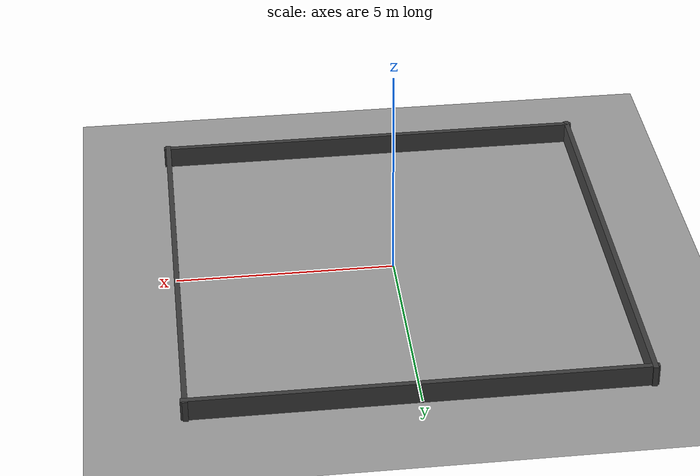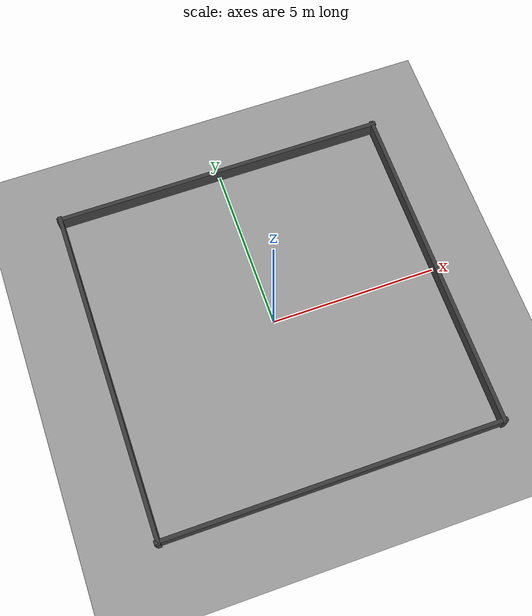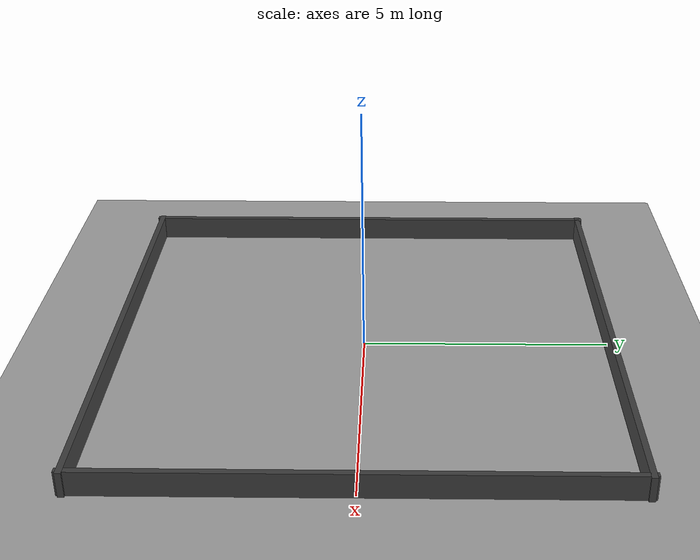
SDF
<?xml version="1.0"?>
<sdf version="1.6">
  <world name="aggregation_arena">
    <plugin name="gazebo_ros_state" filename="libgazebo_ros_state.so"/>

    <include>
      <uri>model://sun</uri>
    </include>

    <model name="ground_plane">
      <static>true</static>
      <link name="link">
        <collision name="collision">
          <geometry>
            <plane>
              <normal>0 0 1</normal>
              <size>12 12</size>
            </plane>
          </geometry>
        </collision>
        <visual name="visual">
          <geometry>
            <plane>
              <normal>0 0 1</normal>
              <size>12 12</size>
            </plane>
          </geometry>
          <material>
            <ambient>0.65 0.65 0.65 1</ambient>
            <diffuse>0.65 0.65 0.65 1</diffuse>
          </material>
        </visual>
      </link>
    </model>

    <model name="wall_north">
      <static>true</static>
      <pose>0 5 0.25 0 0 0</pose>
      <link name="link">
        <collision name="collision">
          <geometry><box><size>10.2 0.12 0.5</size></box></geometry>
        </collision>
        <visual name="visual">
          <geometry><box><size>10.2 0.12 0.5</size></box></geometry>
          <material><ambient>0.25 0.25 0.25 1</ambient><diffuse>0.25 0.25 0.25 1</diffuse></material>
        </visual>
      </link>
    </model>

    <model name="wall_south">
      <static>true</static>
      <pose>0 -5 0.25 0 0 0</pose>
      <link name="link">
        <collision name="collision">
          <geometry><box><size>10.2 0.12 0.5</size></box></geometry>
        </collision>
        <visual name="visual">
          <geometry><box><size>10.2 0.12 0.5</size></box></geometry>
          <material><ambient>0.25 0.25 0.25 1</ambient><diffuse>0.25 0.25 0.25 1</diffuse></material>
        </visual>
      </link>
    </model>

    <model name="wall_east">
      <static>true</static>
      <pose>5 0 0.25 0 0 0</pose>
      <link name="link">
        <collision name="collision">
          <geometry><box><size>0.12 10.2 0.5</size></box></geometry>
        </collision>
        <visual name="visual">
          <geometry><box><size>0.12 10.2 0.5</size></box></geometry>
          <material><ambient>0.25 0.25 0.25 1</ambient><diffuse>0.25 0.25 0.25 1</diffuse></material>
        </visual>
      </link>
    </model>

    <model name="wall_west">
      <static>true</static>
      <pose>-5 0 0.25 0 0 0</pose>
      <link name="link">
        <collision name="collision">
          <geometry><box><size>0.12 10.2 0.5</size></box></geometry>
        </collision>
        <visual name="visual">
          <geometry><box><size>0.12 10.2 0.5</size></box></geometry>
          <material><ambient>0.25 0.25 0.25 1</ambient><diffuse>0.25 0.25 0.25 1</diffuse></material>
        </visual>
      </link>
    </model>
  </world>
</sdf>
